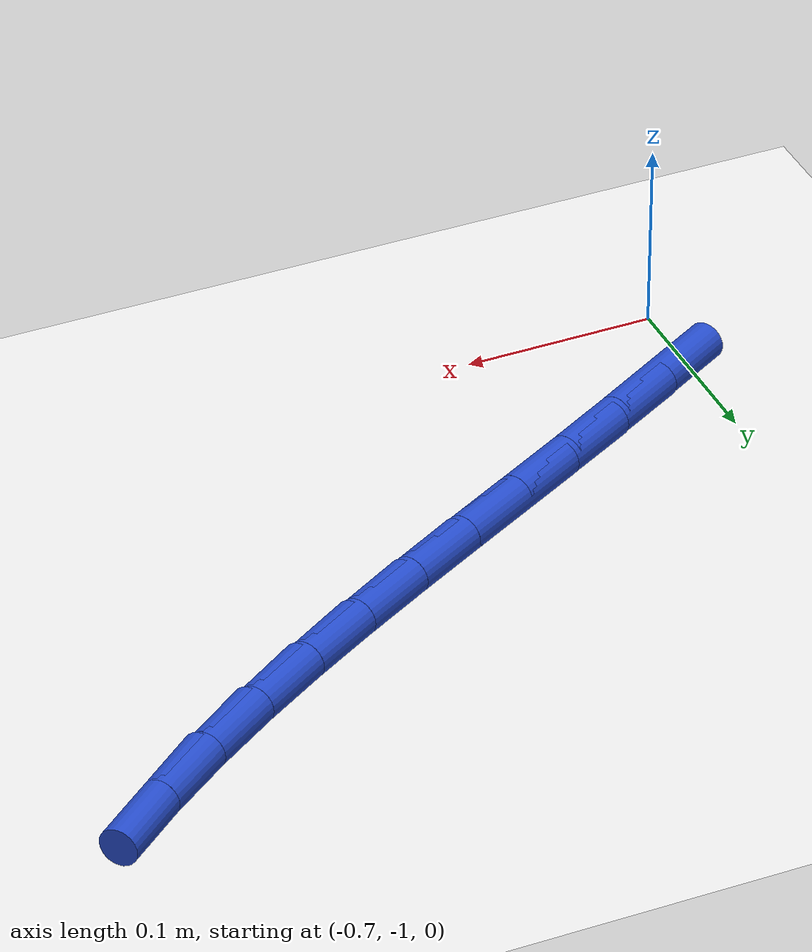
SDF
<sdf version="1.6">
 <world name="default">
  <model name="ground_plane">
   <static>1</static>
   <link name="link">
    <collision name="collision">
     <geometry><plane><normal>0 0 1</normal><size>100 100</size></plane></geometry>
     <surface><friction><ode><mu>100</mu><mu2>50</mu2></ode></friction></surface>
    </collision>
    <visual name="visual">
     <cast_shadows>0</cast_shadows>
     <geometry><plane><normal>0 0 1</normal><size>100 100</size></plane></geometry>
     <material>
      <script><uri>file://media/materials/scripts/gazebo.material</uri><name>Gazebo/WhiteGlow</name></script>
     </material>
    </visual>
   </link>
  </model>
  <model name="line">
   <link name="link_140">
    <pose>-0.6774996171186694 -0.9385602069885096 0.01 0 1.57 0.5255338315294927</pose>
    <collision name="collision">
     <geometry><cylinder><radius>0.01</radius><length>0.08</length></cylinder></geometry>
    </collision>
    <visual name="visual">
     <material>
      <script><name>Gazebo/Blue</name><uri>file://media/materials/scripts/gazebo.material</uri></script>
     </material>
     <geometry><cylinder><radius>0.01</radius><length>0.08</length></cylinder></geometry>
    </visual>
   </link>
   <link name="link_141">
    <pose>-0.6413150671495769 -0.91757558395156 0.01 0 1.57 0.5138970835920944</pose>
    <collision name="collision">
     <geometry><cylinder><radius>0.01</radius><length>0.08</length></cylinder></geometry>
    </collision>
    <visual name="visual">
     <material>
      <script><name>Gazebo/Blue</name><uri>file://media/materials/scripts/gazebo.material</uri></script>
     </material>
     <geometry><cylinder><radius>0.01</radius><length>0.08</length></cylinder></geometry>
    </visual>
   </link>
   <link name="link_142">
    <pose>-0.6048954848321562 -0.8970172275635997 0.01 0 1.57 0.5033015829899977</pose>
    <collision name="collision">
     <geometry><cylinder><radius>0.01</radius><length>0.08</length></cylinder></geometry>
    </collision>
    <visual name="visual">
     <material>
      <script><name>Gazebo/Blue</name><uri>file://media/materials/scripts/gazebo.material</uri></script>
     </material>
     <geometry><cylinder><radius>0.01</radius><length>0.08</length></cylinder></geometry>
    </visual>
   </link>
   <link name="link_143">
    <pose>-0.5683029717995735 -0.8768694930712576 0.01 0 1.57 0.49971337136199684</pose>
    <collision name="collision">
     <geometry><cylinder><radius>0.01</radius><length>0.08</length></cylinder></geometry>
    </collision>
    <visual name="visual">
     <material>
      <script><name>Gazebo/Blue</name><uri>file://media/materials/scripts/gazebo.material</uri></script>
     </material>
     <geometry><cylinder><radius>0.01</radius><length>0.08</length></cylinder></geometry>
    </visual>
   </link>
   <link name="link_144">
    <pose>-0.5317215559312365 -0.8568985869452338 0.01 0 1.57 0.5033464887339731</pose>
    <collision name="collision">
     <geometry><cylinder><radius>0.01</radius><length>0.08</length></cylinder></geometry>
    </collision>
    <visual name="visual">
     <material>
      <script><name>Gazebo/Blue</name><uri>file://media/materials/scripts/gazebo.material</uri></script>
     </material>
     <geometry><cylinder><radius>0.01</radius><length>0.08</length></cylinder></geometry>
    </visual>
   </link>
   <link name="link_145">
    <pose>-0.4953388752596892 -0.8368642564195071 0.01 0 1.57 0.5142885204646499</pose>
    <collision name="collision">
     <geometry><cylinder><radius>0.01</radius><length>0.08</length></cylinder></geometry>
    </collision>
    <visual name="visual">
     <material>
      <script><name>Gazebo/Blue</name><uri>file://media/materials/scripts/gazebo.material</uri></script>
     </material>
     <geometry><cylinder><radius>0.01</radius><length>0.08</length></cylinder></geometry>
    </visual>
   </link>
   <link name="link_146">
    <pose>-0.4593425678174746 -0.8165262487280557 0.01 0 1.57 0.5326734865781435</pose>
    <collision name="collision">
     <geometry><cylinder><radius>0.01</radius><length>0.08</length></cylinder></geometry>
    </collision>
    <visual name="visual">
     <material>
      <script><name>Gazebo/Blue</name><uri>file://media/materials/scripts/gazebo.material</uri></script>
     </material>
     <geometry><cylinder><radius>0.01</radius><length>0.08</length></cylinder></geometry>
    </visual>
   </link>
   <link name="link_147">
    <pose>-0.4239202716371355 -0.7956443111048568 0.01 0 1.57 0.5586660349636073</pose>
    <collision name="collision">
     <geometry><cylinder><radius>0.01</radius><length>0.08</length></cylinder></geometry>
    </collision>
    <visual name="visual">
     <material>
      <script><name>Gazebo/Blue</name><uri>file://media/materials/scripts/gazebo.material</uri></script>
     </material>
     <geometry><cylinder><radius>0.01</radius><length>0.08</length></cylinder></geometry>
    </visual>
   </link>
   <link name="link_148">
    <pose>-0.38925962475121656 -0.7739781907838896 0.01 0 1.57 0.5924317961222765</pose>
    <collision name="collision">
     <geometry><cylinder><radius>0.01</radius><length>0.08</length></cylinder></geometry>
    </collision>
    <visual name="visual">
     <material>
      <script><name>Gazebo/Blue</name><uri>file://media/materials/scripts/gazebo.material</uri></script>
     </material>
     <geometry><cylinder><radius>0.01</radius><length>0.08</length></cylinder></geometry>
    </visual>
   </link>
   <link name="link_149">
    <pose>-0.35554826519226057 -0.751287634999132 0.01 0 1.57 0.6340915433228768</pose>
    <collision name="collision">
     <geometry><cylinder><radius>0.01</radius><length>0.08</length></cylinder></geometry>
    </collision>
    <visual name="visual">
     <material>
      <script><name>Gazebo/Blue</name><uri>file://media/materials/scripts/gazebo.material</uri></script>
     </material>
     <geometry><cylinder><radius>0.01</radius><length>0.08</length></cylinder></geometry>
    </visual>
   </link>
   <link name="link_150">
    <pose>-0.3229738309928109 -0.7273323909845618 0.01 0 1.57 0.6836579091171162</pose>
    <collision name="collision">
     <geometry><cylinder><radius>0.01</radius><length>0.08</length></cylinder></geometry>
    </collision>
    <visual name="visual">
     <material>
      <script><name>Gazebo/Blue</name><uri>file://media/materials/scripts/gazebo.material</uri></script>
     </material>
     <geometry><cylinder><radius>0.01</radius><length>0.08</length></cylinder></geometry>
    </visual>
   </link>
  </model>
 </world>
</sdf>
